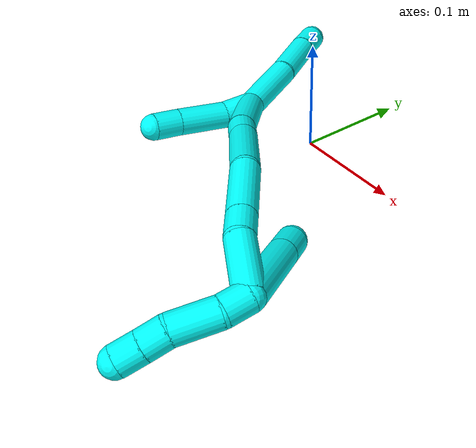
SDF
<sdf version="1.7">
 <world name="default">
  <model name="3">
   <static>0</static>
   <link name="3">
    <collision name="collision-cylinder-e_1_2_8">
     <pose>-0.004027 0.017354 -0.027164 -2.57308 -0.124292 0.419694</pose>
     <geometry><cylinder><radius>0.0125</radius><length>0.06497</length></cylinder></geometry>
     <surface>
      <friction><ode><mu>1.16</mu><mu2>1.16</mu2><slip1>0</slip1><slip2>0</slip2></ode></friction>
      <contact><ode><kp>1e+06</kp><kd>1</kd><max_vel>0</max_vel><min_depth>0.001</min_depth></ode></contact>
     </surface>
    </collision>
    <visual name="visual-cylinder-e_1_2_8">
     <pose>-0.004027 0.017354 -0.027164 -2.57308 -0.124292 0.419694</pose>
     <geometry><cylinder><radius>0.0125</radius><length>0.06497</length></cylinder></geometry>
     <material><ambient>0.003922 1 0.996078 1</ambient></material>
    </visual>
    <collision name="collision-cylinder-e_2_8_9">
     <pose>-0.013583 0.046436 -0.07849 -2.68973 -0.203019 0.834285</pose>
     <geometry><cylinder><radius>0.0125</radius><length>0.054842</length></cylinder></geometry>
     <surface>
      <friction><ode><mu>1.16</mu><mu2>1.16</mu2><slip1>0</slip1><slip2>0</slip2></ode></friction>
      <contact><ode><kp>1e+06</kp><kd>1</kd><max_vel>0</max_vel><min_depth>0.001</min_depth></ode></contact>
     </surface>
    </collision>
    <visual name="visual-cylinder-e_2_8_9">
     <pose>-0.013583 0.046436 -0.07849 -2.68973 -0.203019 0.834285</pose>
     <geometry><cylinder><radius>0.0125</radius><length>0.054842</length></cylinder></geometry>
     <material><ambient>0.003922 1 0.996078 1</ambient></material>
    </visual>
    <collision name="collision-cylinder-e_3_9_6">
     <pose>-0.021816 0.063805 -0.116389 -2.75184 -0.180116 0.858151</pose>
     <geometry><cylinder><radius>0.0125</radius><length>0.030188</length></cylinder></geometry>
     <surface>
      <friction><ode><mu>1.16</mu><mu2>1.16</mu2><slip1>0</slip1><slip2>0</slip2></ode></friction>
      <contact><ode><kp>1e+06</kp><kd>1</kd><max_vel>0</max_vel><min_depth>0.001</min_depth></ode></contact>
     </surface>
    </collision>
    <visual name="visual-cylinder-e_3_9_6">
     <pose>-0.021816 0.063805 -0.116389 -2.75184 -0.180116 0.858151</pose>
     <geometry><cylinder><radius>0.0125</radius><length>0.030188</length></cylinder></geometry>
     <material><ambient>0.003922 1 0.996078 1</ambient></material>
    </visual>
    <collision name="collision-cylinder-e_1_2_10">
     <pose>-0.005404 -0.009945 0.0089 0.840771 -0.384722 -0.173699</pose>
     <geometry><cylinder><radius>0.0125</radius><length>0.028797</length></cylinder></geometry>
     <surface>
      <friction><ode><mu>1.16</mu><mu2>1.16</mu2><slip1>0</slip1><slip2>0</slip2></ode></friction>
      <contact><ode><kp>1e+06</kp><kd>1</kd><max_vel>0</max_vel><min_depth>0.001</min_depth></ode></contact>
     </surface>
    </collision>
    <visual name="visual-cylinder-e_1_2_10">
     <pose>-0.005404 -0.009945 0.0089 0.840771 -0.384722 -0.173699</pose>
     <geometry><cylinder><radius>0.0125</radius><length>0.028797</length></cylinder></geometry>
     <material><ambient>0.003922 1 0.996078 1</ambient></material>
    </visual>
    <collision name="collision-cylinder-e_2_10_11">
     <pose>-0.022136 -0.032731 0.033488 0.68594 -0.50957 -0.185467</pose>
     <geometry><cylinder><radius>0.0125</radius><length>0.046445</length></cylinder></geometry>
     <surface>
      <friction><ode><mu>1.16</mu><mu2>1.16</mu2><slip1>0</slip1><slip2>0</slip2></ode></friction>
      <contact><ode><kp>1e+06</kp><kd>1</kd><max_vel>0</max_vel><min_depth>0.001</min_depth></ode></contact>
     </surface>
    </collision>
    <visual name="visual-cylinder-e_2_10_11">
     <pose>-0.022136 -0.032731 0.033488 0.68594 -0.50957 -0.185467</pose>
     <geometry><cylinder><radius>0.0125</radius><length>0.046445</length></cylinder></geometry>
     <material><ambient>0.003922 1 0.996078 1</ambient></material>
    </visual>
    <collision name="collision-cylinder-e_3_11_5">
     <pose>-0.038851 -0.052286 0.05807 0.646661 -0.450309 -0.153196</pose>
     <geometry><cylinder><radius>0.0125</radius><length>0.024758</length></cylinder></geometry>
     <surface>
      <friction><ode><mu>1.16</mu><mu2>1.16</mu2><slip1>0</slip1><slip2>0</slip2></ode></friction>
      <contact><ode><kp>1e+06</kp><kd>1</kd><max_vel>0</max_vel><min_depth>0.001</min_depth></ode></contact>
     </surface>
    </collision>
    <visual name="visual-cylinder-e_3_11_5">
     <pose>-0.038851 -0.052286 0.05807 0.646661 -0.450309 -0.153196</pose>
     <geometry><cylinder><radius>0.0125</radius><length>0.024758</length></cylinder></geometry>
     <material><ambient>0.003922 1 0.996078 1</ambient></material>
    </visual>
    <collision name="collision-cylinder-e_1_2_12">
     <pose>0.011441 -0.002734 0.032516 0.083881 0.337218 0.014287</pose>
     <geometry><cylinder><radius>0.0125</radius><length>0.069156</length></cylinder></geometry>
     <surface>
      <friction><ode><mu>1.16</mu><mu2>1.16</mu2><slip1>0</slip1><slip2>0</slip2></ode></friction>
      <contact><ode><kp>1e+06</kp><kd>1</kd><max_vel>0</max_vel><min_depth>0.001</min_depth></ode></contact>
     </surface>
    </collision>
    <visual name="visual-cylinder-e_1_2_12">
     <pose>0.011441 -0.002734 0.032516 0.083881 0.337218 0.014287</pose>
     <geometry><cylinder><radius>0.0125</radius><length>0.069156</length></cylinder></geometry>
     <material><ambient>0.003922 1 0.996078 1</ambient></material>
    </visual>
    <collision name="collision-cylinder-e_2_12_13">
     <pose>0.028587 -0.005479 0.075245 0.001133 0.509506 0.000295</pose>
     <geometry><cylinder><radius>0.0125</radius><length>0.023399</length></cylinder></geometry>
     <surface>
      <friction><ode><mu>1.16</mu><mu2>1.16</mu2><slip1>0</slip1><slip2>0</slip2></ode></friction>
      <contact><ode><kp>1e+06</kp><kd>1</kd><max_vel>0</max_vel><min_depth>0.001</min_depth></ode></contact>
     </surface>
    </collision>
    <visual name="visual-cylinder-e_2_12_13">
     <pose>0.028587 -0.005479 0.075245 0.001133 0.509506 0.000295</pose>
     <geometry><cylinder><radius>0.0125</radius><length>0.023399</length></cylinder></geometry>
     <material><ambient>0.003922 1 0.996078 1</ambient></material>
    </visual>
    <collision name="collision-cylinder-e_3_13_14">
     <pose>0.051251 -0.005243 0.119825 -0.007202 0.458361 -0.00168</pose>
     <geometry><cylinder><radius>0.0125</radius><length>0.076646</length></cylinder></geometry>
     <surface>
      <friction><ode><mu>1.16</mu><mu2>1.16</mu2><slip1>0</slip1><slip2>0</slip2></ode></friction>
      <contact><ode><kp>1e+06</kp><kd>1</kd><max_vel>0</max_vel><min_depth>0.001</min_depth></ode></contact>
     </surface>
    </collision>
    <visual name="visual-cylinder-e_3_13_14">
     <pose>0.051251 -0.005243 0.119825 -0.007202 0.458361 -0.00168</pose>
     <geometry><cylinder><radius>0.0125</radius><length>0.076646</length></cylinder></geometry>
     <material><ambient>0.003922 1 0.996078 1</ambient></material>
    </visual>
    <collision name="collision-cylinder-e_4_14_15">
     <pose>0.082935 -0.012622 0.176973 0.323002 0.549934 0.091859</pose>
     <geometry><cylinder><radius>0.0125</radius><length>0.056358</length></cylinder></geometry>
     <surface>
      <friction><ode><mu>1.16</mu><mu2>1.16</mu2><slip1>0</slip1><slip2>0</slip2></ode></friction>
      <contact><ode><kp>1e+06</kp><kd>1</kd><max_vel>0</max_vel><min_depth>0.001</min_depth></ode></contact>
     </surface>
    </collision>
    <visual name="visual-cylinder-e_4_14_15">
     <pose>0.082935 -0.012622 0.176973 0.323002 0.549934 0.091859</pose>
     <geometry><cylinder><radius>0.0125</radius><length>0.056358</length></cylinder></geometry>
     <material><ambient>0.003922 1 0.996078 1</ambient></material>
    </visual>
    <collision name="collision-cylinder-e_5_15_16">
     <pose>0.103886 -0.023294 0.209745 0.296009 0.537357 0.082056</pose>
     <geometry><cylinder><radius>0.0125</radius><length>0.024316</length></cylinder></geometry>
     <surface>
      <friction><ode><mu>1.16</mu><mu2>1.16</mu2><slip1>0</slip1><slip2>0</slip2></ode></friction>
      <contact><ode><kp>1e+06</kp><kd>1</kd><max_vel>0</max_vel><min_depth>0.001</min_depth></ode></contact>
     </surface>
    </collision>
    <visual name="visual-cylinder-e_5_15_16">
     <pose>0.103886 -0.023294 0.209745 0.296009 0.537357 0.082056</pose>
     <geometry><cylinder><radius>0.0125</radius><length>0.024316</length></cylinder></geometry>
     <material><ambient>0.003922 1 0.996078 1</ambient></material>
    </visual>
    <collision name="collision-cylinder-e_6_16_1">
     <pose>0.127906 -0.033624 0.235809 0.425458 0.789629 0.179525</pose>
     <geometry><cylinder><radius>0.0125</radius><length>0.050126</length></cylinder></geometry>
     <surface>
      <friction><ode><mu>1.16</mu><mu2>1.16</mu2><slip1>0</slip1><slip2>0</slip2></ode></friction>
      <contact><ode><kp>1e+06</kp><kd>1</kd><max_vel>0</max_vel><min_depth>0.001</min_depth></ode></contact>
     </surface>
    </collision>
    <visual name="visual-cylinder-e_6_16_1">
     <pose>0.127906 -0.033624 0.235809 0.425458 0.789629 0.179525</pose>
     <geometry><cylinder><radius>0.0125</radius><length>0.050126</length></cylinder></geometry>
     <material><ambient>0.003922 1 0.996078 1</ambient></material>
    </visual>
    <collision name="collision-cylinder-e_1_1_17">
     <pose>0.142468 -0.049066 0.258713 0.873741 -0.295139 -0.138606</pose>
     <geometry><cylinder><radius>0.0125</radius><length>0.022243</length></cylinder></geometry>
     <surface>
      <friction><ode><mu>1.16</mu><mu2>1.16</mu2><slip1>0</slip1><slip2>0</slip2></ode></friction>
      <contact><ode><kp>1e+06</kp><kd>1</kd><max_vel>0</max_vel><min_depth>0.001</min_depth></ode></contact>
     </surface>
    </collision>
    <visual name="visual-cylinder-e_1_1_17">
     <pose>0.142468 -0.049066 0.258713 0.873741 -0.295139 -0.138606</pose>
     <geometry><cylinder><radius>0.0125</radius><length>0.022243</length></cylinder></geometry>
     <material><ambient>0.003922 1 0.996078 1</ambient></material>
    </visual>
    <collision name="collision-cylinder-e_2_17_18">
     <pose>0.130115 -0.071454 0.273934 1.03804 -0.504371 -0.292296</pose>
     <geometry><cylinder><radius>0.0125</radius><length>0.037736</length></cylinder></geometry>
     <surface>
      <friction><ode><mu>1.16</mu><mu2>1.16</mu2><slip1>0</slip1><slip2>0</slip2></ode></friction>
      <contact><ode><kp>1e+06</kp><kd>1</kd><max_vel>0</max_vel><min_depth>0.001</min_depth></ode></contact>
     </surface>
    </collision>
    <visual name="visual-cylinder-e_2_17_18">
     <pose>0.130115 -0.071454 0.273934 1.03804 -0.504371 -0.292296</pose>
     <geometry><cylinder><radius>0.0125</radius><length>0.037736</length></cylinder></geometry>
     <material><ambient>0.003922 1 0.996078 1</ambient></material>
    </visual>
    <collision name="collision-cylinder-e_3_18_19">
     <pose>0.117973 -0.094427 0.286128 1.16043 -0.307114 -0.202212</pose>
     <geometry><cylinder><radius>0.0125</radius><length>0.020005</length></cylinder></geometry>
     <surface>
      <friction><ode><mu>1.16</mu><mu2>1.16</mu2><slip1>0</slip1><slip2>0</slip2></ode></friction>
      <contact><ode><kp>1e+06</kp><kd>1</kd><max_vel>0</max_vel><min_depth>0.001</min_depth></ode></contact>
     </surface>
    </collision>
    <visual name="visual-cylinder-e_3_18_19">
     <pose>0.117973 -0.094427 0.286128 1.16043 -0.307114 -0.202212</pose>
     <geometry><cylinder><radius>0.0125</radius><length>0.020005</length></cylinder></geometry>
     <material><ambient>0.003922 1 0.996078 1</ambient></material>
    </visual>
    <collision name="collision-cylinder-e_4_19_4">
     <pose>0.111753 -0.11189 0.293659 1.16685 -0.324993 -0.215589</pose>
     <geometry><cylinder><radius>0.0125</radius><length>0.020015</length></cylinder></geometry>
     <surface>
      <friction><ode><mu>1.16</mu><mu2>1.16</mu2><slip1>0</slip1><slip2>0</slip2></ode></friction>
      <contact><ode><kp>1e+06</kp><kd>1</kd><max_vel>0</max_vel><min_depth>0.001</min_depth></ode></contact>
     </surface>
    </collision>
    <visual name="visual-cylinder-e_4_19_4">
     <pose>0.111753 -0.11189 0.293659 1.16685 -0.324993 -0.215589</pose>
     <geometry><cylinder><radius>0.0125</radius><length>0.020015</length></cylinder></geometry>
     <material><ambient>0.003922 1 0.996078 1</ambient></material>
    </visual>
    <collision name="collision-cylinder-e_1_1_20">
     <pose>0.140844 -0.034745 0.215557 -2.97353 -0.131112 1.32414</pose>
     <geometry><cylinder><radius>0.0125</radius><length>0.074326</length></cylinder></geometry>
     <surface>
      <friction><ode><mu>1.16</mu><mu2>1.16</mu2><slip1>0</slip1><slip2>0</slip2></ode></friction>
      <contact><ode><kp>1e+06</kp><kd>1</kd><max_vel>0</max_vel><min_depth>0.001</min_depth></ode></contact>
     </surface>
    </collision>
    <visual name="visual-cylinder-e_1_1_20">
     <pose>0.140844 -0.034745 0.215557 -2.97353 -0.131112 1.32414</pose>
     <geometry><cylinder><radius>0.0125</radius><length>0.074326</length></cylinder></geometry>
     <material><ambient>0.003922 1 0.996078 1</ambient></material>
    </visual>
    <collision name="collision-cylinder-e_2_20_3">
     <pose>0.134257 -0.026499 0.166684 -2.97712 -0.135098 1.37461</pose>
     <geometry><cylinder><radius>0.0125</radius><length>0.025674</length></cylinder></geometry>
     <surface>
      <friction><ode><mu>1.16</mu><mu2>1.16</mu2><slip1>0</slip1><slip2>0</slip2></ode></friction>
      <contact><ode><kp>1e+06</kp><kd>1</kd><max_vel>0</max_vel><min_depth>0.001</min_depth></ode></contact>
     </surface>
    </collision>
    <visual name="visual-cylinder-e_2_20_3">
     <pose>0.134257 -0.026499 0.166684 -2.97712 -0.135098 1.37461</pose>
     <geometry><cylinder><radius>0.0125</radius><length>0.025674</length></cylinder></geometry>
     <material><ambient>0.003922 1 0.996078 1</ambient></material>
    </visual>
    <collision name="collision-sphere-3">
     <pose>0.132528 -0.024417 0.154136 0 -0 0</pose>
     <geometry><sphere><radius>0.0125</radius></sphere></geometry>
     <surface>
      <friction><ode><mu>1.16</mu><mu2>1.16</mu2><slip1>0</slip1><slip2>0</slip2></ode></friction>
      <contact><ode><kp>1e+06</kp><kd>1</kd><max_vel>0</max_vel><min_depth>0.001</min_depth></ode></contact>
     </surface>
    </collision>
    <visual name="visual-sphere-3">
     <pose>0.132528 -0.024417 0.154136 0 -0 0</pose>
     <geometry><sphere><radius>0.0125</radius></sphere></geometry>
     <material><ambient>0.003922 1 0.996078 1</ambient></material>
    </visual>
    <collision name="collision-sphere-20">
     <pose>0.135986 -0.028582 0.179233 0 -0 0</pose>
     <geometry><sphere><radius>0.0125</radius></sphere></geometry>
     <surface>
      <friction><ode><mu>1.16</mu><mu2>1.16</mu2><slip1>0</slip1><slip2>0</slip2></ode></friction>
      <contact><ode><kp>1e+06</kp><kd>1</kd><max_vel>0</max_vel><min_depth>0.001</min_depth></ode></contact>
     </surface>
    </collision>
    <visual name="visual-sphere-20">
     <pose>0.135986 -0.028582 0.179233 0 -0 0</pose>
     <geometry><sphere><radius>0.0125</radius></sphere></geometry>
     <material><ambient>0.003922 1 0.996078 1</ambient></material>
    </visual>
    <collision name="collision-sphere-4">
     <pose>0.108558 -0.120611 0.297387 0 -0 0</pose>
     <geometry><sphere><radius>0.0125</radius></sphere></geometry>
     <surface>
      <friction><ode><mu>1.16</mu><mu2>1.16</mu2><slip1>0</slip1><slip2>0</slip2></ode></friction>
      <contact><ode><kp>1e+06</kp><kd>1</kd><max_vel>0</max_vel><min_depth>0.001</min_depth></ode></contact>
     </surface>
    </collision>
    <visual name="visual-sphere-4">
     <pose>0.108558 -0.120611 0.297387 0 -0 0</pose>
     <geometry><sphere><radius>0.0125</radius></sphere></geometry>
     <material><ambient>0.003922 1 0.996078 1</ambient></material>
    </visual>
    <collision name="collision-sphere-11">
     <pose>-0.033464 -0.045571 0.049175 0 -0 0</pose>
     <geometry><sphere><radius>0.0125</radius></sphere></geometry>
     <surface>
      <friction><ode><mu>1.16</mu><mu2>1.16</mu2><slip1>0</slip1><slip2>0</slip2></ode></friction>
      <contact><ode><kp>1e+06</kp><kd>1</kd><max_vel>0</max_vel><min_depth>0.001</min_depth></ode></contact>
     </surface>
    </collision>
    <visual name="visual-sphere-11">
     <pose>-0.033464 -0.045571 0.049175 0 -0 0</pose>
     <geometry><sphere><radius>0.0125</radius></sphere></geometry>
     <material><ambient>0.003922 1 0.996078 1</ambient></material>
    </visual>
    <collision name="collision-sphere-10">
     <pose>-0.010808 -0.01989 0.017801 0 -0 0</pose>
     <geometry><sphere><radius>0.0125</radius></sphere></geometry>
     <surface>
      <friction><ode><mu>1.16</mu><mu2>1.16</mu2><slip1>0</slip1><slip2>0</slip2></ode></friction>
      <contact><ode><kp>1e+06</kp><kd>1</kd><max_vel>0</max_vel><min_depth>0.001</min_depth></ode></contact>
     </surface>
    </collision>
    <visual name="visual-sphere-10">
     <pose>-0.010808 -0.01989 0.017801 0 -0 0</pose>
     <geometry><sphere><radius>0.0125</radius></sphere></geometry>
     <material><ambient>0.003922 1 0.996078 1</ambient></material>
    </visual>
    <collision name="collision-sphere-6">
     <pose>-0.02452 0.069447 -0.130125 0 -0 0</pose>
     <geometry><sphere><radius>0.0125</radius></sphere></geometry>
     <surface>
      <friction><ode><mu>1.16</mu><mu2>1.16</mu2><slip1>0</slip1><slip2>0</slip2></ode></friction>
      <contact><ode><kp>1e+06</kp><kd>1</kd><max_vel>0</max_vel><min_depth>0.001</min_depth></ode></contact>
     </surface>
    </collision>
    <visual name="visual-sphere-6">
     <pose>-0.02452 0.069447 -0.130125 0 -0 0</pose>
     <geometry><sphere><radius>0.0125</radius></sphere></geometry>
     <material><ambient>0.003922 1 0.996078 1</ambient></material>
    </visual>
    <collision name="collision-sphere-9">
     <pose>-0.019112 0.058163 -0.102653 0 -0 0</pose>
     <geometry><sphere><radius>0.0125</radius></sphere></geometry>
     <surface>
      <friction><ode><mu>1.16</mu><mu2>1.16</mu2><slip1>0</slip1><slip2>0</slip2></ode></friction>
      <contact><ode><kp>1e+06</kp><kd>1</kd><max_vel>0</max_vel><min_depth>0.001</min_depth></ode></contact>
     </surface>
    </collision>
    <visual name="visual-sphere-9">
     <pose>-0.019112 0.058163 -0.102653 0 -0 0</pose>
     <geometry><sphere><radius>0.0125</radius></sphere></geometry>
     <material><ambient>0.003922 1 0.996078 1</ambient></material>
    </visual>
    <collision name="collision-sphere-2">
     <geometry><sphere><radius>0.0125</radius></sphere></geometry>
     <surface>
      <friction><ode><mu>1.16</mu><mu2>1.16</mu2><slip1>0</slip1><slip2>0</slip2></ode></friction>
      <contact><ode><kp>1e+06</kp><kd>1</kd><max_vel>0</max_vel><min_depth>0.001</min_depth></ode></contact>
     </surface>
    </collision>
    <visual name="visual-sphere-2">
     <geometry><sphere><radius>0.0125</radius></sphere></geometry>
     <material><ambient>0.003922 1 0.996078 1</ambient></material>
    </visual>
    <collision name="collision-sphere-19">
     <pose>0.114949 -0.10317 0.289932 0 -0 0</pose>
     <geometry><sphere><radius>0.0125</radius></sphere></geometry>
     <surface>
      <friction><ode><mu>1.16</mu><mu2>1.16</mu2><slip1>0</slip1><slip2>0</slip2></ode></friction>
      <contact><ode><kp>1e+06</kp><kd>1</kd><max_vel>0</max_vel><min_depth>0.001</min_depth></ode></contact>
     </surface>
    </collision>
    <visual name="visual-sphere-19">
     <pose>0.114949 -0.10317 0.289932 0 -0 0</pose>
     <geometry><sphere><radius>0.0125</radius></sphere></geometry>
     <material><ambient>0.003922 1 0.996078 1</ambient></material>
    </visual>
    <collision name="collision-sphere-8">
     <pose>-0.008055 0.034708 -0.054328 0 -0 0</pose>
     <geometry><sphere><radius>0.0125</radius></sphere></geometry>
     <surface>
      <friction><ode><mu>1.16</mu><mu2>1.16</mu2><slip1>0</slip1><slip2>0</slip2></ode></friction>
      <contact><ode><kp>1e+06</kp><kd>1</kd><max_vel>0</max_vel><min_depth>0.001</min_depth></ode></contact>
     </surface>
    </collision>
    <visual name="visual-sphere-8">
     <pose>-0.008055 0.034708 -0.054328 0 -0 0</pose>
     <geometry><sphere><radius>0.0125</radius></sphere></geometry>
     <material><ambient>0.003922 1 0.996078 1</ambient></material>
    </visual>
    <collision name="collision-sphere-5">
     <pose>-0.044239 -0.059001 0.066964 0 -0 0</pose>
     <geometry><sphere><radius>0.0125</radius></sphere></geometry>
     <surface>
      <friction><ode><mu>1.16</mu><mu2>1.16</mu2><slip1>0</slip1><slip2>0</slip2></ode></friction>
      <contact><ode><kp>1e+06</kp><kd>1</kd><max_vel>0</max_vel><min_depth>0.001</min_depth></ode></contact>
     </surface>
    </collision>
    <visual name="visual-sphere-5">
     <pose>-0.044239 -0.059001 0.066964 0 -0 0</pose>
     <geometry><sphere><radius>0.0125</radius></sphere></geometry>
     <material><ambient>0.003922 1 0.996078 1</ambient></material>
    </visual>
    <collision name="collision-sphere-12">
     <pose>0.022881 -0.005468 0.065031 0 -0 0</pose>
     <geometry><sphere><radius>0.0125</radius></sphere></geometry>
     <surface>
      <friction><ode><mu>1.16</mu><mu2>1.16</mu2><slip1>0</slip1><slip2>0</slip2></ode></friction>
      <contact><ode><kp>1e+06</kp><kd>1</kd><max_vel>0</max_vel><min_depth>0.001</min_depth></ode></contact>
     </surface>
    </collision>
    <visual name="visual-sphere-12">
     <pose>0.022881 -0.005468 0.065031 0 -0 0</pose>
     <geometry><sphere><radius>0.0125</radius></sphere></geometry>
     <material><ambient>0.003922 1 0.996078 1</ambient></material>
    </visual>
    <collision name="collision-sphere-13">
     <pose>0.034294 -0.005491 0.085458 0 -0 0</pose>
     <geometry><sphere><radius>0.0125</radius></sphere></geometry>
     <surface>
      <friction><ode><mu>1.16</mu><mu2>1.16</mu2><slip1>0</slip1><slip2>0</slip2></ode></friction>
      <contact><ode><kp>1e+06</kp><kd>1</kd><max_vel>0</max_vel><min_depth>0.001</min_depth></ode></contact>
     </surface>
    </collision>
    <visual name="visual-sphere-13">
     <pose>0.034294 -0.005491 0.085458 0 -0 0</pose>
     <geometry><sphere><radius>0.0125</radius></sphere></geometry>
     <material><ambient>0.003922 1 0.996078 1</ambient></material>
    </visual>
    <collision name="collision-sphere-14">
     <pose>0.068208 -0.004996 0.154191 0 -0 0</pose>
     <geometry><sphere><radius>0.0125</radius></sphere></geometry>
     <surface>
      <friction><ode><mu>1.16</mu><mu2>1.16</mu2><slip1>0</slip1><slip2>0</slip2></ode></friction>
      <contact><ode><kp>1e+06</kp><kd>1</kd><max_vel>0</max_vel><min_depth>0.001</min_depth></ode></contact>
     </surface>
    </collision>
    <visual name="visual-sphere-14">
     <pose>0.068208 -0.004996 0.154191 0 -0 0</pose>
     <geometry><sphere><radius>0.0125</radius></sphere></geometry>
     <material><ambient>0.003922 1 0.996078 1</ambient></material>
    </visual>
    <collision name="collision-sphere-15">
     <pose>0.097662 -0.020247 0.199755 0 -0 0</pose>
     <geometry><sphere><radius>0.0125</radius></sphere></geometry>
     <surface>
      <friction><ode><mu>1.16</mu><mu2>1.16</mu2><slip1>0</slip1><slip2>0</slip2></ode></friction>
      <contact><ode><kp>1e+06</kp><kd>1</kd><max_vel>0</max_vel><min_depth>0.001</min_depth></ode></contact>
     </surface>
    </collision>
    <visual name="visual-sphere-15">
     <pose>0.097662 -0.020247 0.199755 0 -0 0</pose>
     <geometry><sphere><radius>0.0125</radius></sphere></geometry>
     <material><ambient>0.003922 1 0.996078 1</ambient></material>
    </visual>
    <collision name="collision-sphere-16">
     <pose>0.110109 -0.026341 0.219735 0 -0 0</pose>
     <geometry><sphere><radius>0.0125</radius></sphere></geometry>
     <surface>
      <friction><ode><mu>1.16</mu><mu2>1.16</mu2><slip1>0</slip1><slip2>0</slip2></ode></friction>
      <contact><ode><kp>1e+06</kp><kd>1</kd><max_vel>0</max_vel><min_depth>0.001</min_depth></ode></contact>
     </surface>
    </collision>
    <visual name="visual-sphere-16">
     <pose>0.110109 -0.026341 0.219735 0 -0 0</pose>
     <geometry><sphere><radius>0.0125</radius></sphere></geometry>
     <material><ambient>0.003922 1 0.996078 1</ambient></material>
    </visual>
    <collision name="collision-sphere-1">
     <pose>0.145703 -0.040908 0.251882 0 -0 0</pose>
     <geometry><sphere><radius>0.0125</radius></sphere></geometry>
     <surface>
      <friction><ode><mu>1.16</mu><mu2>1.16</mu2><slip1>0</slip1><slip2>0</slip2></ode></friction>
      <contact><ode><kp>1e+06</kp><kd>1</kd><max_vel>0</max_vel><min_depth>0.001</min_depth></ode></contact>
     </surface>
    </collision>
    <visual name="visual-sphere-1">
     <pose>0.145703 -0.040908 0.251882 0 -0 0</pose>
     <geometry><sphere><radius>0.0125</radius></sphere></geometry>
     <material><ambient>0.003922 1 0.996078 1</ambient></material>
    </visual>
    <collision name="collision-sphere-18">
     <pose>0.120996 -0.085684 0.282324 0 -0 0</pose>
     <geometry><sphere><radius>0.0125</radius></sphere></geometry>
     <surface>
      <friction><ode><mu>1.16</mu><mu2>1.16</mu2><slip1>0</slip1><slip2>0</slip2></ode></friction>
      <contact><ode><kp>1e+06</kp><kd>1</kd><max_vel>0</max_vel><min_depth>0.001</min_depth></ode></contact>
     </surface>
    </collision>
    <visual name="visual-sphere-18">
     <pose>0.120996 -0.085684 0.282324 0 -0 0</pose>
     <geometry><sphere><radius>0.0125</radius></sphere></geometry>
     <material><ambient>0.003922 1 0.996078 1</ambient></material>
    </visual>
    <collision name="collision-sphere-17">
     <pose>0.139233 -0.057225 0.265544 0 -0 0</pose>
     <geometry><sphere><radius>0.0125</radius></sphere></geometry>
     <surface>
      <friction><ode><mu>1.16</mu><mu2>1.16</mu2><slip1>0</slip1><slip2>0</slip2></ode></friction>
      <contact><ode><kp>1e+06</kp><kd>1</kd><max_vel>0</max_vel><min_depth>0.001</min_depth></ode></contact>
     </surface>
    </collision>
    <visual name="visual-sphere-17">
     <pose>0.139233 -0.057225 0.265544 0 -0 0</pose>
     <geometry><sphere><radius>0.0125</radius></sphere></geometry>
     <material><ambient>0.003922 1 0.996078 1</ambient></material>
    </visual>
    <inertial>
     <pose>0.055707 -0.016483 0.108998 0 -0 0</pose>
     <mass>0.75</mass>
     <inertia>
      <ixx>0.000223</ixx>
      <ixy>0</ixy>
      <ixz>0</ixz>
      <iyy>0.000137</iyy>
      <iyz>0</iyz>
      <izz>-1.4e-05</izz>
     </inertia>
    </inertial>
   </link>
   <pose>-0.079248 -0.009095 0.006816 1.03334 0.430992 0.307355</pose>
  </model>
 </world>
</sdf>
